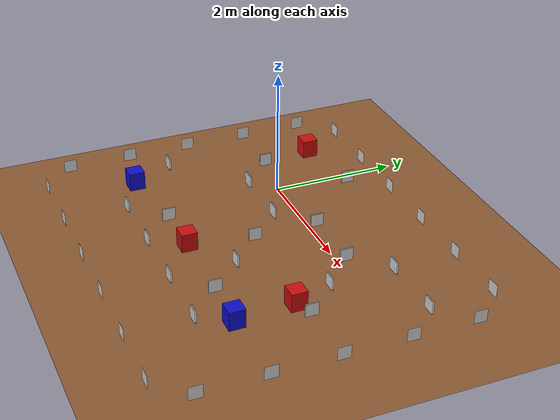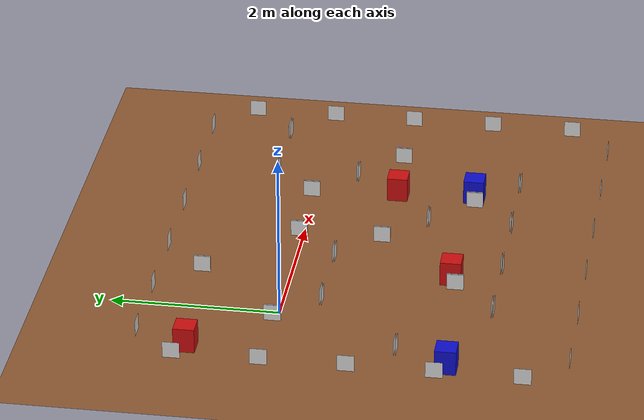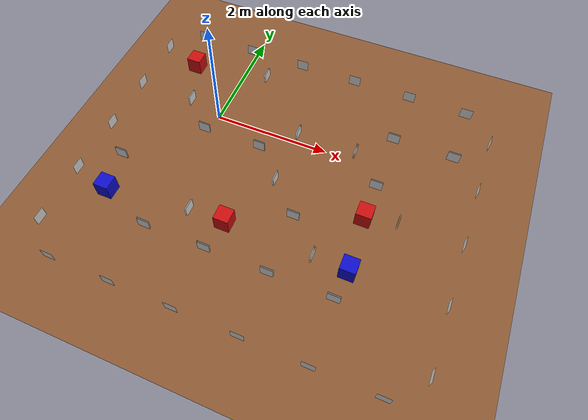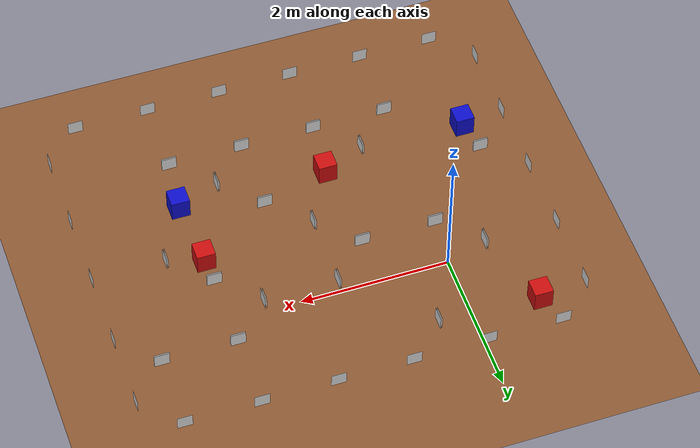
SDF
<sdf version="1.5">
 <world name="maze_6x5_v2_victimas">
  <physics type="ode">
   <max_step_size>0.001</max_step_size>
   <real_time_factor>1</real_time_factor>
   <real_time_update_rate>1000</real_time_update_rate>
   <gravity>0 0 -9.8</gravity>
  </physics>
  <plugin filename="gz-sim-physics-system" name="gz::sim::systems::Physics"/>
  <plugin filename="gz-sim-user-commands-system" name="gz::sim::systems::UserCommands"/>
  <plugin filename="gz-sim-scene-broadcaster-system" name="gz::sim::systems::SceneBroadcaster"/>
  <plugin filename="gz-sim-contact-system" name="gz::sim::systems::Contact"/>
  <plugin filename="gz-sim-sensors-system" name="gz::sim::systems::Sensors">
   <render_engine>ogre2</render_engine>
  </plugin>
  <plugin filename="gz-sim-imu-system" name="gz::sim::systems::Imu"/>
  <scene>
   <shadows>false</shadows>
   <ambient>0.2 0.2 0.2 1</ambient>
   <background>1 1 1 1</background>
   <grid>false</grid>
   <origin_visual>false</origin_visual>
  </scene>
  <include><uri>model://sun</uri></include>
  <light name="camera_spot_1_light" type="spot">
   <pose>-6 4 4 0 -1 -0.8</pose>
   <diffuse>0.5 0.5 0.5 1</diffuse>
   <specular>0.1 0.1 0.1 1</specular>
   <direction>0 0 -1</direction>
   <attenuation>
    <range>20</range>
    <constant>0.2</constant>
    <linear>0.01</linear>
    <quadratic>0.001</quadratic>
   </attenuation>
   <cast_shadows>0</cast_shadows>
   <spot><inner_angle>0.6</inner_angle><outer_angle>1</outer_angle><falloff>1</falloff></spot>
  </light>
  <light name="camera_spot_2_light" type="spot">
   <pose>5 -3 4 0 0.8 -0.6</pose>
   <diffuse>0.5 0.5 0.5 1</diffuse>
   <specular>0.1 0.1 0.1 1</specular>
   <direction>0 0 -1</direction>
   <attenuation>
    <range>20</range>
    <constant>0.3</constant>
    <linear>0.01</linear>
    <quadratic>0.001</quadratic>
   </attenuation>
   <cast_shadows>0</cast_shadows>
   <spot><inner_angle>0.6</inner_angle><outer_angle>1</outer_angle><falloff>1</falloff></spot>
  </light>
  <include><uri>model://floor_parquet2</uri><pose>1.5 -1.0 0 0 0 0</pose></include>
  <include><uri>model://maze_2_tags</uri><pose>-1.5 -3.5 0 0 0 0</pose></include>
  <model name="marcas_color">
   <static>1</static>
   <link name="cuadrado_rojo_1">
    <pose>1.0308 -1.8959 0.15 0 0 0</pose>
    <collision name="collision"><geometry><box><size>0.25 0.25 0.3</size></box></geometry></collision>
    <visual name="visual">
     <geometry><box><size>0.25 0.25 0.3</size></box></geometry>
     <material>
      <ambient>0.8 0.05 0.05 1</ambient>
      <diffuse>0.8 0.05 0.05 1</diffuse>
      <specular>0.1 0.1 0.1 1</specular>
     </material>
    </visual>
   </link>
   <link name="cuadrado_azul_1">
    <pose>3.0479 -1.9360 0.15 0 0 0</pose>
    <collision name="collision"><geometry><box><size>0.25 0.25 0.3</size></box></geometry></collision>
    <visual name="visual">
     <geometry><box><size>0.25 0.25 0.3</size></box></geometry>
     <material>
      <ambient>0.05 0.05 0.8 1</ambient>
      <diffuse>0.05 0.05 0.8 1</diffuse>
      <specular>0.1 0.1 0.1 1</specular>
     </material>
    </visual>
   </link>
   <link name="cuadrado_rojo_2">
    <pose>2.9884 -0.9984 0.15 0 0 0</pose>
    <collision name="collision"><geometry><box><size>0.25 0.25 0.3</size></box></geometry></collision>
    <visual name="visual">
     <geometry><box><size>0.25 0.25 0.3</size></box></geometry>
     <material>
      <ambient>0.8 0.05 0.05 1</ambient>
      <diffuse>0.8 0.05 0.05 1</diffuse>
      <specular>0.1 0.1 0.1 1</specular>
     </material>
    </visual>
   </link>
   <link name="cuadrado_azul_2">
    <pose>-0.9657 -2.0783 0.15 0 0 0</pose>
    <collision name="collision"><geometry><box><size>0.25 0.25 0.3</size></box></geometry></collision>
    <visual name="visual">
     <geometry><box><size>0.25 0.25 0.3</size></box></geometry>
     <material>
      <ambient>0.05 0.05 0.8 1</ambient>
      <diffuse>0.05 0.05 0.8 1</diffuse>
      <specular>0.1 0.1 0.1 1</specular>
     </material>
    </visual>
   </link>
   <link name="cuadrado_rojo_3">
    <pose>-0.9077 0.9429 0.15 0 0 0</pose>
    <collision name="collision"><geometry><box><size>0.25 0.25 0.3</size></box></geometry></collision>
    <visual name="visual">
     <geometry><box><size>0.25 0.25 0.3</size></box></geometry>
     <material>
      <ambient>0.8 0.05 0.05 1</ambient>
      <diffuse>0.8 0.05 0.05 1</diffuse>
      <specular>0.1 0.1 0.1 1</specular>
     </material>
    </visual>
   </link>
  </model>
 </world>
</sdf>
